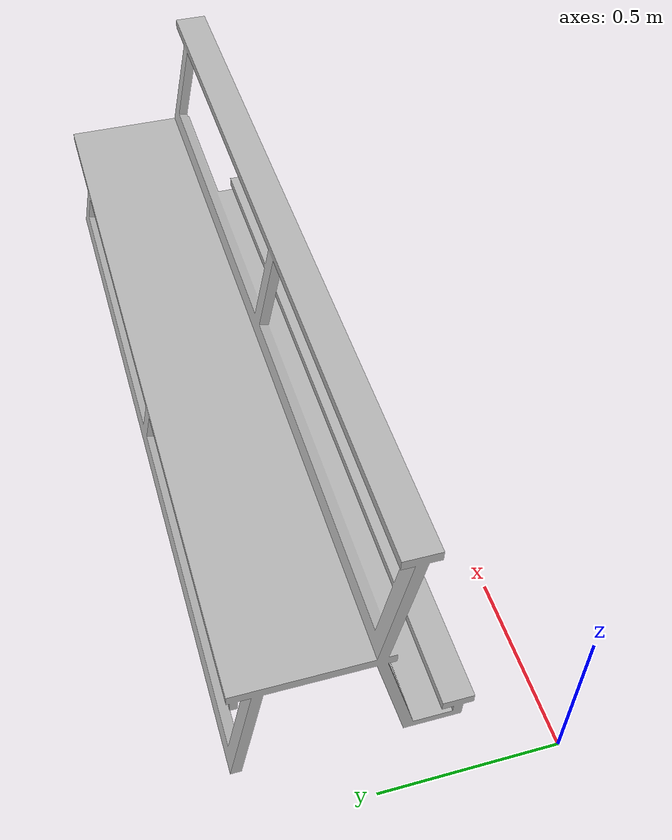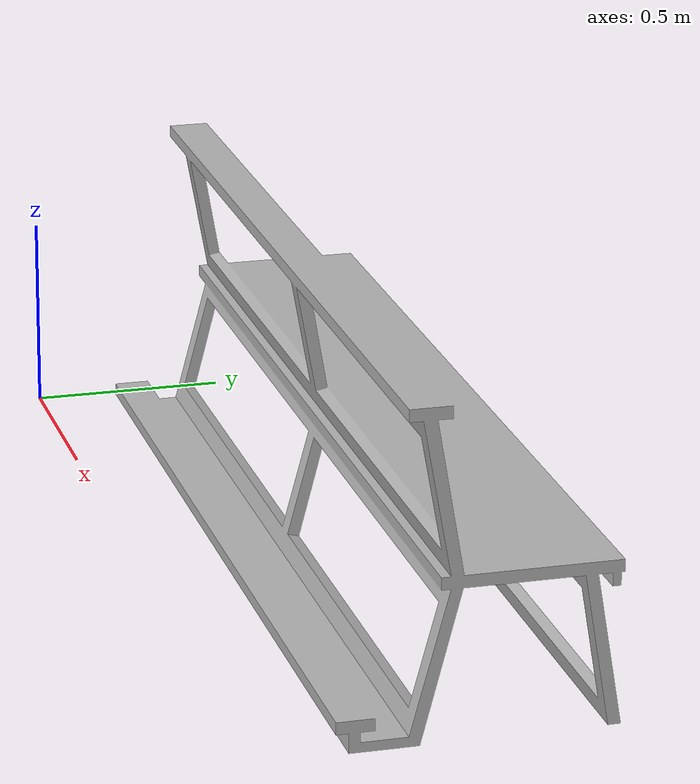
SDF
<?xml version="1.0" ?>
<sdf version="1.4">
  <model name="Church-bench2">
    <link name="link">
      <collision name="collision">
	<geometry>
          <mesh>
            <uri>model://Church-bench2/meshes/model.dae</uri>
          </mesh>
        </geometry>
      </collision>
      <visual name="visual">
        <geometry>
          <mesh>
            <uri>model://Church-bench2/meshes/model.dae</uri>
          </mesh>
        </geometry>
      </visual>
    </link>
    <static>1</static>
  </model>
</sdf>
